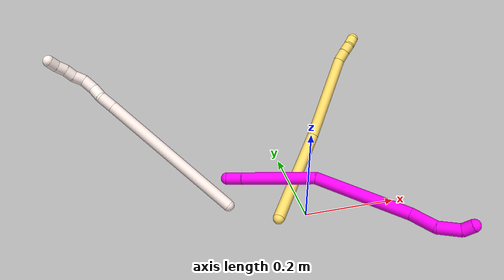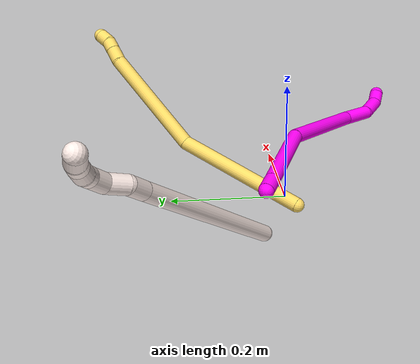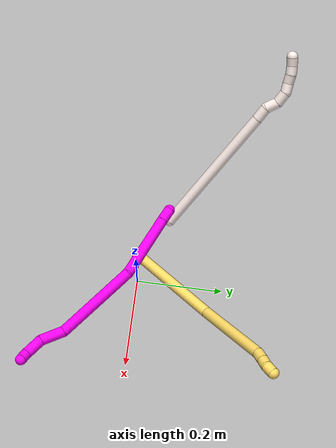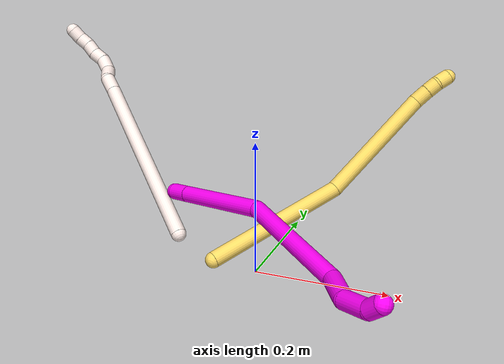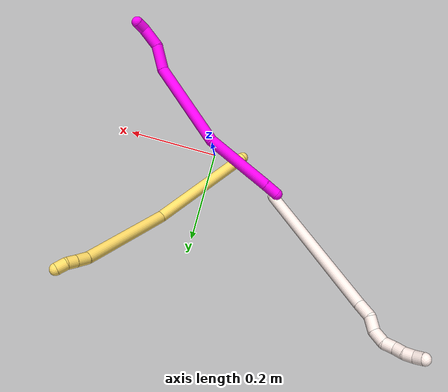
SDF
<sdf version="1.7">
 <world name="default">
  <model name="5">
   <static>0</static>
   <link name="5">
    <collision name="collision-cylinder-e_1_1_4">
     <pose>0.032331 0.054681 0.098055 -0.508701 0.280387 -0.073344</pose>
     <geometry><cylinder><radius>0.0125</radius><length>0.233667</length></cylinder></geometry>
     <surface>
      <friction><ode><mu>1.16</mu><mu2>1.16</mu2><slip1>0</slip1><slip2>0</slip2></ode></friction>
      <contact><ode><kp>1e+06</kp><kd>1</kd><max_vel>0</max_vel><min_depth>0.001</min_depth></ode></contact>
     </surface>
    </collision>
    <visual name="visual-cylinder-e_1_1_4">
     <pose>0.032331 0.054681 0.098055 -0.508701 0.280387 -0.073344</pose>
     <geometry><cylinder><radius>0.0125</radius><length>0.233667</length></cylinder></geometry>
     <material><ambient>1 0.858824 0.4 1</ambient></material>
    </visual>
    <collision name="collision-cylinder-e_2_4_5">
     <pose>0.125445 0.137303 0.269486 -0.363847 0.658777 -0.125603</pose>
     <geometry><cylinder><radius>0.0125</radius><length>0.198587</length></cylinder></geometry>
     <surface>
      <friction><ode><mu>1.16</mu><mu2>1.16</mu2><slip1>0</slip1><slip2>0</slip2></ode></friction>
      <contact><ode><kp>1e+06</kp><kd>1</kd><max_vel>0</max_vel><min_depth>0.001</min_depth></ode></contact>
     </surface>
    </collision>
    <visual name="visual-cylinder-e_2_4_5">
     <pose>0.125445 0.137303 0.269486 -0.363847 0.658777 -0.125603</pose>
     <geometry><cylinder><radius>0.0125</radius><length>0.198587</length></cylinder></geometry>
     <material><ambient>1 0.858824 0.4 1</ambient></material>
    </visual>
    <collision name="collision-cylinder-e_3_5_6">
     <pose>0.195439 0.170444 0.350227 -0.614667 0.796144 -0.265371</pose>
     <geometry><cylinder><radius>0.0125</radius><length>0.025779</length></cylinder></geometry>
     <surface>
      <friction><ode><mu>1.16</mu><mu2>1.16</mu2><slip1>0</slip1><slip2>0</slip2></ode></friction>
      <contact><ode><kp>1e+06</kp><kd>1</kd><max_vel>0</max_vel><min_depth>0.001</min_depth></ode></contact>
     </surface>
    </collision>
    <visual name="visual-cylinder-e_3_5_6">
     <pose>0.195439 0.170444 0.350227 -0.614667 0.796144 -0.265371</pose>
     <geometry><cylinder><radius>0.0125</radius><length>0.025779</length></cylinder></geometry>
     <material><ambient>1 0.858824 0.4 1</ambient></material>
    </visual>
    <collision name="collision-cylinder-e_4_6_7">
     <pose>0.211646 0.180116 0.363275 -0.666789 0.768785 -0.278373</pose>
     <geometry><cylinder><radius>0.0125</radius><length>0.020123</length></cylinder></geometry>
     <surface>
      <friction><ode><mu>1.16</mu><mu2>1.16</mu2><slip1>0</slip1><slip2>0</slip2></ode></friction>
      <contact><ode><kp>1e+06</kp><kd>1</kd><max_vel>0</max_vel><min_depth>0.001</min_depth></ode></contact>
     </surface>
    </collision>
    <visual name="visual-cylinder-e_4_6_7">
     <pose>0.211646 0.180116 0.363275 -0.666789 0.768785 -0.278373</pose>
     <geometry><cylinder><radius>0.0125</radius><length>0.020123</length></cylinder></geometry>
     <material><ambient>1 0.858824 0.4 1</ambient></material>
    </visual>
    <collision name="collision-cylinder-e_5_7_2">
     <pose>0.223337 0.189907 0.377261 -0.569688 0.444459 -0.132133</pose>
     <geometry><cylinder><radius>0.0125</radius><length>0.021844</length></cylinder></geometry>
     <surface>
      <friction><ode><mu>1.16</mu><mu2>1.16</mu2><slip1>0</slip1><slip2>0</slip2></ode></friction>
      <contact><ode><kp>1e+06</kp><kd>1</kd><max_vel>0</max_vel><min_depth>0.001</min_depth></ode></contact>
     </surface>
    </collision>
    <visual name="visual-cylinder-e_5_7_2">
     <pose>0.223337 0.189907 0.377261 -0.569688 0.444459 -0.132133</pose>
     <geometry><cylinder><radius>0.0125</radius><length>0.021844</length></cylinder></geometry>
     <material><ambient>1 0.858824 0.4 1</ambient></material>
    </visual>
    <collision name="collision-sphere-2">
     <pose>0.228033 0.195226 0.385565 0 -0 0</pose>
     <geometry><sphere><radius>0.0125</radius></sphere></geometry>
     <surface>
      <friction><ode><mu>1.16</mu><mu2>1.16</mu2><slip1>0</slip1><slip2>0</slip2></ode></friction>
      <contact><ode><kp>1e+06</kp><kd>1</kd><max_vel>0</max_vel><min_depth>0.001</min_depth></ode></contact>
     </surface>
    </collision>
    <visual name="visual-sphere-2">
     <pose>0.228033 0.195226 0.385565 0 -0 0</pose>
     <geometry><sphere><radius>0.0125</radius></sphere></geometry>
     <material><ambient>1 0.858824 0.4 1</ambient></material>
    </visual>
    <collision name="collision-sphere-7">
     <pose>0.218641 0.184589 0.368958 0 -0 0</pose>
     <geometry><sphere><radius>0.0125</radius></sphere></geometry>
     <surface>
      <friction><ode><mu>1.16</mu><mu2>1.16</mu2><slip1>0</slip1><slip2>0</slip2></ode></friction>
      <contact><ode><kp>1e+06</kp><kd>1</kd><max_vel>0</max_vel><min_depth>0.001</min_depth></ode></contact>
     </surface>
    </collision>
    <visual name="visual-sphere-7">
     <pose>0.218641 0.184589 0.368958 0 -0 0</pose>
     <geometry><sphere><radius>0.0125</radius></sphere></geometry>
     <material><ambient>1 0.858824 0.4 1</ambient></material>
    </visual>
    <collision name="collision-sphere-6">
     <pose>0.204651 0.175643 0.357592 0 -0 0</pose>
     <geometry><sphere><radius>0.0125</radius></sphere></geometry>
     <surface>
      <friction><ode><mu>1.16</mu><mu2>1.16</mu2><slip1>0</slip1><slip2>0</slip2></ode></friction>
      <contact><ode><kp>1e+06</kp><kd>1</kd><max_vel>0</max_vel><min_depth>0.001</min_depth></ode></contact>
     </surface>
    </collision>
    <visual name="visual-sphere-6">
     <pose>0.204651 0.175643 0.357592 0 -0 0</pose>
     <geometry><sphere><radius>0.0125</radius></sphere></geometry>
     <material><ambient>1 0.858824 0.4 1</ambient></material>
    </visual>
    <collision name="collision-sphere-5">
     <pose>0.186227 0.165245 0.342861 0 -0 0</pose>
     <geometry><sphere><radius>0.0125</radius></sphere></geometry>
     <surface>
      <friction><ode><mu>1.16</mu><mu2>1.16</mu2><slip1>0</slip1><slip2>0</slip2></ode></friction>
      <contact><ode><kp>1e+06</kp><kd>1</kd><max_vel>0</max_vel><min_depth>0.001</min_depth></ode></contact>
     </surface>
    </collision>
    <visual name="visual-sphere-5">
     <pose>0.186227 0.165245 0.342861 0 -0 0</pose>
     <geometry><sphere><radius>0.0125</radius></sphere></geometry>
     <material><ambient>1 0.858824 0.4 1</ambient></material>
    </visual>
    <collision name="collision-sphere-1">
     <geometry><sphere><radius>0.0125</radius></sphere></geometry>
     <surface>
      <friction><ode><mu>1.16</mu><mu2>1.16</mu2><slip1>0</slip1><slip2>0</slip2></ode></friction>
      <contact><ode><kp>1e+06</kp><kd>1</kd><max_vel>0</max_vel><min_depth>0.001</min_depth></ode></contact>
     </surface>
    </collision>
    <visual name="visual-sphere-1">
     <geometry><sphere><radius>0.0125</radius></sphere></geometry>
     <material><ambient>1 0.858824 0.4 1</ambient></material>
    </visual>
    <collision name="collision-sphere-4">
     <pose>0.064662 0.109362 0.19611 0 -0 0</pose>
     <geometry><sphere><radius>0.0125</radius></sphere></geometry>
     <surface>
      <friction><ode><mu>1.16</mu><mu2>1.16</mu2><slip1>0</slip1><slip2>0</slip2></ode></friction>
      <contact><ode><kp>1e+06</kp><kd>1</kd><max_vel>0</max_vel><min_depth>0.001</min_depth></ode></contact>
     </surface>
    </collision>
    <visual name="visual-sphere-4">
     <pose>0.064662 0.109362 0.19611 0 -0 0</pose>
     <geometry><sphere><radius>0.0125</radius></sphere></geometry>
     <material><ambient>1 0.858824 0.4 1</ambient></material>
    </visual>
    <inertial>
     <pose>0.093284 0.104421 0.202016 0 -0 0</pose>
     <mass>0.5</mass>
     <inertia>
      <ixx>0.001426</ixx>
      <ixy>0</ixy>
      <ixz>0</ixz>
      <iyy>0.001453</iyy>
      <iyz>0</iyz>
      <izz>-0.001365</izz>
     </inertia>
    </inertial>
   </link>
   <pose>-0.063014 -0.009996 0.012607 -0.956291 -1.1439 -0.618442</pose>
  </model>
  <model name="10">
   <static>0</static>
   <link name="10">
    <collision name="collision-cylinder-e_1_1_4">
     <pose>0.011319 -0.00496 -0.010144 2.68681 0.786644 2.1242</pose>
     <geometry><cylinder><radius>0.0125</radius><length>0.031976</length></cylinder></geometry>
     <surface>
      <friction><ode><mu>1.16</mu><mu2>1.16</mu2><slip1>0</slip1><slip2>0</slip2></ode></friction>
      <contact><ode><kp>1e+06</kp><kd>1</kd><max_vel>0</max_vel><min_depth>0.001</min_depth></ode></contact>
     </surface>
    </collision>
    <visual name="visual-cylinder-e_1_1_4">
     <pose>0.011319 -0.00496 -0.010144 2.68681 0.786644 2.1242</pose>
     <geometry><cylinder><radius>0.0125</radius><length>0.031976</length></cylinder></geometry>
     <material><ambient>1 0 0.964706 1</ambient></material>
    </visual>
    <collision name="collision-cylinder-e_2_4_5">
     <pose>0.075185 -0.032712 -0.069563 2.70836 0.769056 2.14543</pose>
     <geometry><cylinder><radius>0.0125</radius><length>0.151112</length></cylinder></geometry>
     <surface>
      <friction><ode><mu>1.16</mu><mu2>1.16</mu2><slip1>0</slip1><slip2>0</slip2></ode></friction>
      <contact><ode><kp>1e+06</kp><kd>1</kd><max_vel>0</max_vel><min_depth>0.001</min_depth></ode></contact>
     </surface>
    </collision>
    <visual name="visual-cylinder-e_2_4_5">
     <pose>0.075185 -0.032712 -0.069563 2.70836 0.769056 2.14543</pose>
     <geometry><cylinder><radius>0.0125</radius><length>0.151112</length></cylinder></geometry>
     <material><ambient>1 0 0.964706 1</ambient></material>
    </visual>
    <collision name="collision-cylinder-e_3_5_6">
     <pose>0.18819 -0.11629 -0.164731 2.21747 0.670946 1.22155</pose>
     <geometry><cylinder><radius>0.0125</radius><length>0.194487</length></cylinder></geometry>
     <surface>
      <friction><ode><mu>1.16</mu><mu2>1.16</mu2><slip1>0</slip1><slip2>0</slip2></ode></friction>
      <contact><ode><kp>1e+06</kp><kd>1</kd><max_vel>0</max_vel><min_depth>0.001</min_depth></ode></contact>
     </surface>
    </collision>
    <visual name="visual-cylinder-e_3_5_6">
     <pose>0.18819 -0.11629 -0.164731 2.21747 0.670946 1.22155</pose>
     <geometry><cylinder><radius>0.0125</radius><length>0.194487</length></cylinder></geometry>
     <material><ambient>1 0 0.964706 1</ambient></material>
    </visual>
    <collision name="collision-cylinder-e_4_6_7">
     <pose>0.269033 -0.195155 -0.213949 1.75274 0.836991 0.981048</pose>
     <geometry><cylinder><radius>0.0125</radius><length>0.054896</length></cylinder></geometry>
     <surface>
      <friction><ode><mu>1.16</mu><mu2>1.16</mu2><slip1>0</slip1><slip2>0</slip2></ode></friction>
      <contact><ode><kp>1e+06</kp><kd>1</kd><max_vel>0</max_vel><min_depth>0.001</min_depth></ode></contact>
     </surface>
    </collision>
    <visual name="visual-cylinder-e_4_6_7">
     <pose>0.269033 -0.195155 -0.213949 1.75274 0.836991 0.981048</pose>
     <geometry><cylinder><radius>0.0125</radius><length>0.054896</length></cylinder></geometry>
     <material><ambient>1 0 0.964706 1</ambient></material>
    </visual>
    <collision name="collision-cylinder-e_5_7_8">
     <pose>0.307166 -0.221953 -0.227597 2.44014 0.920169 1.86969</pose>
     <geometry><cylinder><radius>0.0125</radius><length>0.044615</length></cylinder></geometry>
     <surface>
      <friction><ode><mu>1.16</mu><mu2>1.16</mu2><slip1>0</slip1><slip2>0</slip2></ode></friction>
      <contact><ode><kp>1e+06</kp><kd>1</kd><max_vel>0</max_vel><min_depth>0.001</min_depth></ode></contact>
     </surface>
    </collision>
    <visual name="visual-cylinder-e_5_7_8">
     <pose>0.307166 -0.221953 -0.227597 2.44014 0.920169 1.86969</pose>
     <geometry><cylinder><radius>0.0125</radius><length>0.044615</length></cylinder></geometry>
     <material><ambient>1 0 0.964706 1</ambient></material>
    </visual>
    <collision name="collision-cylinder-e_6_8_2">
     <pose>0.335412 -0.229511 -0.242363 -2.88606 1.15817 -2.75358</pose>
     <geometry><cylinder><radius>0.0125</radius><length>0.022914</length></cylinder></geometry>
     <surface>
      <friction><ode><mu>1.16</mu><mu2>1.16</mu2><slip1>0</slip1><slip2>0</slip2></ode></friction>
      <contact><ode><kp>1e+06</kp><kd>1</kd><max_vel>0</max_vel><min_depth>0.001</min_depth></ode></contact>
     </surface>
    </collision>
    <visual name="visual-cylinder-e_6_8_2">
     <pose>0.335412 -0.229511 -0.242363 -2.88606 1.15817 -2.75358</pose>
     <geometry><cylinder><radius>0.0125</radius><length>0.022914</length></cylinder></geometry>
     <material><ambient>1 0 0.964706 1</ambient></material>
    </visual>
    <collision name="collision-sphere-2">
     <pose>0.345907 -0.228349 -0.246808 0 -0 0</pose>
     <geometry><sphere><radius>0.0125</radius></sphere></geometry>
     <surface>
      <friction><ode><mu>1.16</mu><mu2>1.16</mu2><slip1>0</slip1><slip2>0</slip2></ode></friction>
      <contact><ode><kp>1e+06</kp><kd>1</kd><max_vel>0</max_vel><min_depth>0.001</min_depth></ode></contact>
     </surface>
    </collision>
    <visual name="visual-sphere-2">
     <pose>0.345907 -0.228349 -0.246808 0 -0 0</pose>
     <geometry><sphere><radius>0.0125</radius></sphere></geometry>
     <material><ambient>1 0 0.964706 1</ambient></material>
    </visual>
    <collision name="collision-sphere-4">
     <pose>0.022639 -0.00992 -0.020287 0 -0 0</pose>
     <geometry><sphere><radius>0.0125</radius></sphere></geometry>
     <surface>
      <friction><ode><mu>1.16</mu><mu2>1.16</mu2><slip1>0</slip1><slip2>0</slip2></ode></friction>
      <contact><ode><kp>1e+06</kp><kd>1</kd><max_vel>0</max_vel><min_depth>0.001</min_depth></ode></contact>
     </surface>
    </collision>
    <visual name="visual-sphere-4">
     <pose>0.022639 -0.00992 -0.020287 0 -0 0</pose>
     <geometry><sphere><radius>0.0125</radius></sphere></geometry>
     <material><ambient>1 0 0.964706 1</ambient></material>
    </visual>
    <collision name="collision-sphere-1">
     <geometry><sphere><radius>0.0125</radius></sphere></geometry>
     <surface>
      <friction><ode><mu>1.16</mu><mu2>1.16</mu2><slip1>0</slip1><slip2>0</slip2></ode></friction>
      <contact><ode><kp>1e+06</kp><kd>1</kd><max_vel>0</max_vel><min_depth>0.001</min_depth></ode></contact>
     </surface>
    </collision>
    <visual name="visual-sphere-1">
     <geometry><sphere><radius>0.0125</radius></sphere></geometry>
     <material><ambient>1 0 0.964706 1</ambient></material>
    </visual>
    <collision name="collision-sphere-8">
     <pose>0.324916 -0.230672 -0.237918 0 -0 0</pose>
     <geometry><sphere><radius>0.0125</radius></sphere></geometry>
     <surface>
      <friction><ode><mu>1.16</mu><mu2>1.16</mu2><slip1>0</slip1><slip2>0</slip2></ode></friction>
      <contact><ode><kp>1e+06</kp><kd>1</kd><max_vel>0</max_vel><min_depth>0.001</min_depth></ode></contact>
     </surface>
    </collision>
    <visual name="visual-sphere-8">
     <pose>0.324916 -0.230672 -0.237918 0 -0 0</pose>
     <geometry><sphere><radius>0.0125</radius></sphere></geometry>
     <material><ambient>1 0 0.964706 1</ambient></material>
    </visual>
    <collision name="collision-sphere-5">
     <pose>0.127731 -0.055504 -0.11884 0 -0 0</pose>
     <geometry><sphere><radius>0.0125</radius></sphere></geometry>
     <surface>
      <friction><ode><mu>1.16</mu><mu2>1.16</mu2><slip1>0</slip1><slip2>0</slip2></ode></friction>
      <contact><ode><kp>1e+06</kp><kd>1</kd><max_vel>0</max_vel><min_depth>0.001</min_depth></ode></contact>
     </surface>
    </collision>
    <visual name="visual-sphere-5">
     <pose>0.127731 -0.055504 -0.11884 0 -0 0</pose>
     <geometry><sphere><radius>0.0125</radius></sphere></geometry>
     <material><ambient>1 0 0.964706 1</ambient></material>
    </visual>
    <collision name="collision-sphere-6">
     <pose>0.248649 -0.177076 -0.210623 0 -0 0</pose>
     <geometry><sphere><radius>0.0125</radius></sphere></geometry>
     <surface>
      <friction><ode><mu>1.16</mu><mu2>1.16</mu2><slip1>0</slip1><slip2>0</slip2></ode></friction>
      <contact><ode><kp>1e+06</kp><kd>1</kd><max_vel>0</max_vel><min_depth>0.001</min_depth></ode></contact>
     </surface>
    </collision>
    <visual name="visual-sphere-6">
     <pose>0.248649 -0.177076 -0.210623 0 -0 0</pose>
     <geometry><sphere><radius>0.0125</radius></sphere></geometry>
     <material><ambient>1 0 0.964706 1</ambient></material>
    </visual>
    <collision name="collision-sphere-7">
     <pose>0.289416 -0.213234 -0.217275 0 -0 0</pose>
     <geometry><sphere><radius>0.0125</radius></sphere></geometry>
     <surface>
      <friction><ode><mu>1.16</mu><mu2>1.16</mu2><slip1>0</slip1><slip2>0</slip2></ode></friction>
      <contact><ode><kp>1e+06</kp><kd>1</kd><max_vel>0</max_vel><min_depth>0.001</min_depth></ode></contact>
     </surface>
    </collision>
    <visual name="visual-sphere-7">
     <pose>0.289416 -0.213234 -0.217275 0 -0 0</pose>
     <geometry><sphere><radius>0.0125</radius></sphere></geometry>
     <material><ambient>1 0 0.964706 1</ambient></material>
    </visual>
    <inertial>
     <pose>0.168965 -0.107186 -0.140654 0 -0 0</pose>
     <mass>0.5</mass>
     <inertia>
      <ixx>0.000731</ixx>
      <ixy>0</ixy>
      <ixz>0</ixz>
      <iyy>0.00103</iyy>
      <iyz>0</iyz>
      <izz>-0.000141</izz>
     </inertia>
    </inertial>
   </link>
   <pose>-0.157296 0.055086 0.085227 1.25442 -0.759204 -0.963863</pose>
  </model>
  <model name="11">
   <static>0</static>
   <link name="11">
    <collision name="collision-cylinder-e_1_1_4">
     <pose>-0.001836 0.001787 0.162849 -0.010973 -0.011275 6.2e-05</pose>
     <geometry><cylinder><radius>0.0125</radius><length>0.325739</length></cylinder></geometry>
     <surface>
      <friction><ode><mu>1.16</mu><mu2>1.16</mu2><slip1>0</slip1><slip2>0</slip2></ode></friction>
      <contact><ode><kp>1e+06</kp><kd>1</kd><max_vel>0</max_vel><min_depth>0.001</min_depth></ode></contact>
     </surface>
    </collision>
    <visual name="visual-cylinder-e_1_1_4">
     <pose>-0.001836 0.001787 0.162849 -0.010973 -0.011275 6.2e-05</pose>
     <geometry><cylinder><radius>0.0125</radius><length>0.325739</length></cylinder></geometry>
     <material><ambient>1 0.933333 0.909804 1</ambient></material>
    </visual>
    <collision name="collision-cylinder-e_2_4_5">
     <pose>-0.004297 0.003372 0.341688 0.012617 -0.039009 -0.000246</pose>
     <geometry><cylinder><radius>0.0125</radius><length>0.032005</length></cylinder></geometry>
     <surface>
      <friction><ode><mu>1.16</mu><mu2>1.16</mu2><slip1>0</slip1><slip2>0</slip2></ode></friction>
      <contact><ode><kp>1e+06</kp><kd>1</kd><max_vel>0</max_vel><min_depth>0.001</min_depth></ode></contact>
     </surface>
    </collision>
    <visual name="visual-cylinder-e_2_4_5">
     <pose>-0.004297 0.003372 0.341688 0.012617 -0.039009 -0.000246</pose>
     <geometry><cylinder><radius>0.0125</radius><length>0.032005</length></cylinder></geometry>
     <material><ambient>1 0.933333 0.909804 1</ambient></material>
    </visual>
    <collision name="collision-cylinder-e_3_5_6">
     <pose>-0.001653 0.008754 0.37079 -0.402559 0.225385 -0.046175</pose>
     <geometry><cylinder><radius>0.0125</radius><length>0.029245</length></cylinder></geometry>
     <surface>
      <friction><ode><mu>1.16</mu><mu2>1.16</mu2><slip1>0</slip1><slip2>0</slip2></ode></friction>
      <contact><ode><kp>1e+06</kp><kd>1</kd><max_vel>0</max_vel><min_depth>0.001</min_depth></ode></contact>
     </surface>
    </collision>
    <visual name="visual-cylinder-e_3_5_6">
     <pose>-0.001653 0.008754 0.37079 -0.402559 0.225385 -0.046175</pose>
     <geometry><cylinder><radius>0.0125</radius><length>0.029245</length></cylinder></geometry>
     <material><ambient>1 0.933333 0.909804 1</ambient></material>
    </visual>
    <collision name="collision-cylinder-e_4_6_7">
     <pose>0.001306 0.013945 0.398254 0.027395 -0.021522 -0.000295</pose>
     <geometry><cylinder><radius>0.0125</radius><length>0.028718</length></cylinder></geometry>
     <surface>
      <friction><ode><mu>1.16</mu><mu2>1.16</mu2><slip1>0</slip1><slip2>0</slip2></ode></friction>
      <contact><ode><kp>1e+06</kp><kd>1</kd><max_vel>0</max_vel><min_depth>0.001</min_depth></ode></contact>
     </surface>
    </collision>
    <visual name="visual-cylinder-e_4_6_7">
     <pose>0.001306 0.013945 0.398254 0.027395 -0.021522 -0.000295</pose>
     <geometry><cylinder><radius>0.0125</radius><length>0.028718</length></cylinder></geometry>
     <material><ambient>1 0.933333 0.909804 1</ambient></material>
    </visual>
    <collision name="collision-cylinder-e_5_7_8">
     <pose>-0.003739 0.011251 0.422648 0.225156 -0.43082 -0.049464</pose>
     <geometry><cylinder><radius>0.0125</radius><length>0.022682</length></cylinder></geometry>
     <surface>
      <friction><ode><mu>1.16</mu><mu2>1.16</mu2><slip1>0</slip1><slip2>0</slip2></ode></friction>
      <contact><ode><kp>1e+06</kp><kd>1</kd><max_vel>0</max_vel><min_depth>0.001</min_depth></ode></contact>
     </surface>
    </collision>
    <visual name="visual-cylinder-e_5_7_8">
     <pose>-0.003739 0.011251 0.422648 0.225156 -0.43082 -0.049464</pose>
     <geometry><cylinder><radius>0.0125</radius><length>0.022682</length></cylinder></geometry>
     <material><ambient>1 0.933333 0.909804 1</ambient></material>
    </visual>
    <collision name="collision-cylinder-e_6_8_9">
     <pose>-0.010485 0.005284 0.442306 0.364337 -0.192882 -0.035638</pose>
     <geometry><cylinder><radius>0.0125</radius><length>0.020966</length></cylinder></geometry>
     <surface>
      <friction><ode><mu>1.16</mu><mu2>1.16</mu2><slip1>0</slip1><slip2>0</slip2></ode></friction>
      <contact><ode><kp>1e+06</kp><kd>1</kd><max_vel>0</max_vel><min_depth>0.001</min_depth></ode></contact>
     </surface>
    </collision>
    <visual name="visual-cylinder-e_6_8_9">
     <pose>-0.010485 0.005284 0.442306 0.364337 -0.192882 -0.035638</pose>
     <geometry><cylinder><radius>0.0125</radius><length>0.020966</length></cylinder></geometry>
     <material><ambient>1 0.933333 0.909804 1</ambient></material>
    </visual>
    <collision name="collision-cylinder-e_7_9_10">
     <pose>-0.016757 -0.002062 0.460489 0.405569 -0.428709 -0.089463</pose>
     <geometry><cylinder><radius>0.0125</radius><length>0.020508</length></cylinder></geometry>
     <surface>
      <friction><ode><mu>1.16</mu><mu2>1.16</mu2><slip1>0</slip1><slip2>0</slip2></ode></friction>
      <contact><ode><kp>1e+06</kp><kd>1</kd><max_vel>0</max_vel><min_depth>0.001</min_depth></ode></contact>
     </surface>
    </collision>
    <visual name="visual-cylinder-e_7_9_10">
     <pose>-0.016757 -0.002062 0.460489 0.405569 -0.428709 -0.089463</pose>
     <geometry><cylinder><radius>0.0125</radius><length>0.020508</length></cylinder></geometry>
     <material><ambient>1 0.933333 0.909804 1</ambient></material>
    </visual>
    <collision name="collision-cylinder-e_8_10_2">
     <pose>-0.024099 -0.011324 0.476851 0.62173 -0.310816 -0.100586</pose>
     <geometry><cylinder><radius>0.0125</radius><length>0.020137</length></cylinder></geometry>
     <surface>
      <friction><ode><mu>1.16</mu><mu2>1.16</mu2><slip1>0</slip1><slip2>0</slip2></ode></friction>
      <contact><ode><kp>1e+06</kp><kd>1</kd><max_vel>0</max_vel><min_depth>0.001</min_depth></ode></contact>
     </surface>
    </collision>
    <visual name="visual-cylinder-e_8_10_2">
     <pose>-0.024099 -0.011324 0.476851 0.62173 -0.310816 -0.100586</pose>
     <geometry><cylinder><radius>0.0125</radius><length>0.020137</length></cylinder></geometry>
     <material><ambient>1 0.933333 0.909804 1</ambient></material>
    </visual>
    <collision name="collision-sphere-2">
     <pose>-0.027178 -0.016908 0.484643 0 -0 0</pose>
     <geometry><sphere><radius>0.0125</radius></sphere></geometry>
     <surface>
      <friction><ode><mu>1.16</mu><mu2>1.16</mu2><slip1>0</slip1><slip2>0</slip2></ode></friction>
      <contact><ode><kp>1e+06</kp><kd>1</kd><max_vel>0</max_vel><min_depth>0.001</min_depth></ode></contact>
     </surface>
    </collision>
    <visual name="visual-sphere-2">
     <pose>-0.027178 -0.016908 0.484643 0 -0 0</pose>
     <geometry><sphere><radius>0.0125</radius></sphere></geometry>
     <material><ambient>1 0.933333 0.909804 1</ambient></material>
    </visual>
    <collision name="collision-sphere-10">
     <pose>-0.02102 -0.005741 0.469059 0 -0 0</pose>
     <geometry><sphere><radius>0.0125</radius></sphere></geometry>
     <surface>
      <friction><ode><mu>1.16</mu><mu2>1.16</mu2><slip1>0</slip1><slip2>0</slip2></ode></friction>
      <contact><ode><kp>1e+06</kp><kd>1</kd><max_vel>0</max_vel><min_depth>0.001</min_depth></ode></contact>
     </surface>
    </collision>
    <visual name="visual-sphere-10">
     <pose>-0.02102 -0.005741 0.469059 0 -0 0</pose>
     <geometry><sphere><radius>0.0125</radius></sphere></geometry>
     <material><ambient>1 0.933333 0.909804 1</ambient></material>
    </visual>
    <collision name="collision-sphere-9">
     <pose>-0.012494 0.001618 0.45192 0 -0 0</pose>
     <geometry><sphere><radius>0.0125</radius></sphere></geometry>
     <surface>
      <friction><ode><mu>1.16</mu><mu2>1.16</mu2><slip1>0</slip1><slip2>0</slip2></ode></friction>
      <contact><ode><kp>1e+06</kp><kd>1</kd><max_vel>0</max_vel><min_depth>0.001</min_depth></ode></contact>
     </surface>
    </collision>
    <visual name="visual-sphere-9">
     <pose>-0.012494 0.001618 0.45192 0 -0 0</pose>
     <geometry><sphere><radius>0.0125</radius></sphere></geometry>
     <material><ambient>1 0.933333 0.909804 1</ambient></material>
    </visual>
    <collision name="collision-sphere-4">
     <pose>-0.003673 0.003574 0.325699 0 -0 0</pose>
     <geometry><sphere><radius>0.0125</radius></sphere></geometry>
     <surface>
      <friction><ode><mu>1.16</mu><mu2>1.16</mu2><slip1>0</slip1><slip2>0</slip2></ode></friction>
      <contact><ode><kp>1e+06</kp><kd>1</kd><max_vel>0</max_vel><min_depth>0.001</min_depth></ode></contact>
     </surface>
    </collision>
    <visual name="visual-sphere-4">
     <pose>-0.003673 0.003574 0.325699 0 -0 0</pose>
     <geometry><sphere><radius>0.0125</radius></sphere></geometry>
     <material><ambient>1 0.933333 0.909804 1</ambient></material>
    </visual>
    <collision name="collision-sphere-1">
     <geometry><sphere><radius>0.0125</radius></sphere></geometry>
     <surface>
      <friction><ode><mu>1.16</mu><mu2>1.16</mu2><slip1>0</slip1><slip2>0</slip2></ode></friction>
      <contact><ode><kp>1e+06</kp><kd>1</kd><max_vel>0</max_vel><min_depth>0.001</min_depth></ode></contact>
     </surface>
    </collision>
    <visual name="visual-sphere-1">
     <geometry><sphere><radius>0.0125</radius></sphere></geometry>
     <material><ambient>1 0.933333 0.909804 1</ambient></material>
    </visual>
    <collision name="collision-sphere-8">
     <pose>-0.008476 0.00895 0.432693 0 -0 0</pose>
     <geometry><sphere><radius>0.0125</radius></sphere></geometry>
     <surface>
      <friction><ode><mu>1.16</mu><mu2>1.16</mu2><slip1>0</slip1><slip2>0</slip2></ode></friction>
      <contact><ode><kp>1e+06</kp><kd>1</kd><max_vel>0</max_vel><min_depth>0.001</min_depth></ode></contact>
     </surface>
    </collision>
    <visual name="visual-sphere-8">
     <pose>-0.008476 0.00895 0.432693 0 -0 0</pose>
     <geometry><sphere><radius>0.0125</radius></sphere></geometry>
     <material><ambient>1 0.933333 0.909804 1</ambient></material>
    </visual>
    <collision name="collision-sphere-5">
     <pose>-0.004921 0.003171 0.357677 0 -0 0</pose>
     <geometry><sphere><radius>0.0125</radius></sphere></geometry>
     <surface>
      <friction><ode><mu>1.16</mu><mu2>1.16</mu2><slip1>0</slip1><slip2>0</slip2></ode></friction>
      <contact><ode><kp>1e+06</kp><kd>1</kd><max_vel>0</max_vel><min_depth>0.001</min_depth></ode></contact>
     </surface>
    </collision>
    <visual name="visual-sphere-5">
     <pose>-0.004921 0.003171 0.357677 0 -0 0</pose>
     <geometry><sphere><radius>0.0125</radius></sphere></geometry>
     <material><ambient>1 0.933333 0.909804 1</ambient></material>
    </visual>
    <collision name="collision-sphere-6">
     <pose>0.001615 0.014338 0.383903 0 -0 0</pose>
     <geometry><sphere><radius>0.0125</radius></sphere></geometry>
     <surface>
      <friction><ode><mu>1.16</mu><mu2>1.16</mu2><slip1>0</slip1><slip2>0</slip2></ode></friction>
      <contact><ode><kp>1e+06</kp><kd>1</kd><max_vel>0</max_vel><min_depth>0.001</min_depth></ode></contact>
     </surface>
    </collision>
    <visual name="visual-sphere-6">
     <pose>0.001615 0.014338 0.383903 0 -0 0</pose>
     <geometry><sphere><radius>0.0125</radius></sphere></geometry>
     <material><ambient>1 0.933333 0.909804 1</ambient></material>
    </visual>
    <collision name="collision-sphere-7">
     <pose>0.000997 0.013552 0.412604 0 -0 0</pose>
     <geometry><sphere><radius>0.0125</radius></sphere></geometry>
     <surface>
      <friction><ode><mu>1.16</mu><mu2>1.16</mu2><slip1>0</slip1><slip2>0</slip2></ode></friction>
      <contact><ode><kp>1e+06</kp><kd>1</kd><max_vel>0</max_vel><min_depth>0.001</min_depth></ode></contact>
     </surface>
    </collision>
    <visual name="visual-sphere-7">
     <pose>0.000997 0.013552 0.412604 0 -0 0</pose>
     <geometry><sphere><radius>0.0125</radius></sphere></geometry>
     <material><ambient>1 0.933333 0.909804 1</ambient></material>
    </visual>
    <inertial>
     <pose>-0.00376 0.002884 0.248338 0 -0 0</pose>
     <mass>0.5</mass>
     <inertia>
      <ixx>0.002907</ixx>
      <ixy>0</ixy>
      <ixz>0</ixz>
      <iyy>0.002907</iyy>
      <iyz>0</iyz>
      <izz>4.2e-05</izz>
     </inertia>
    </inertial>
   </link>
   <pose>-0.154626 0.057391 0.011498 -0.926376 -0.386853 0.60848</pose>
  </model>
 </world>
</sdf>
